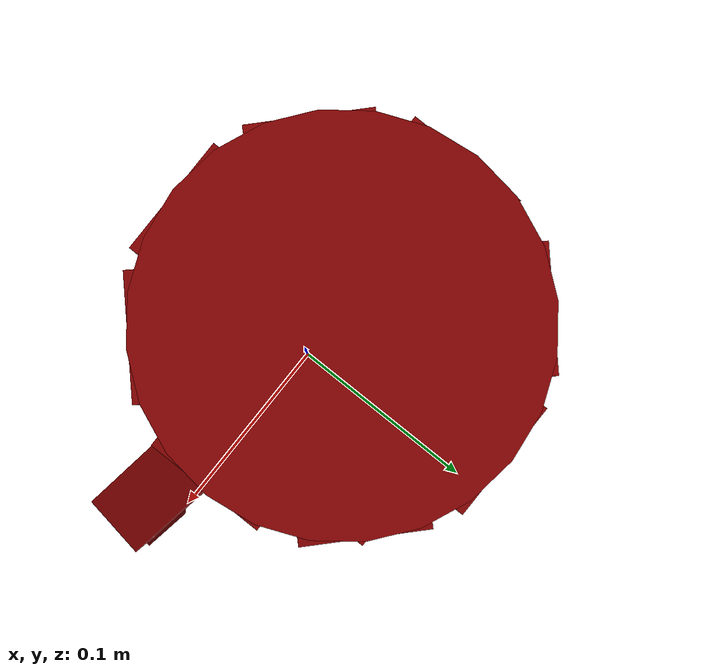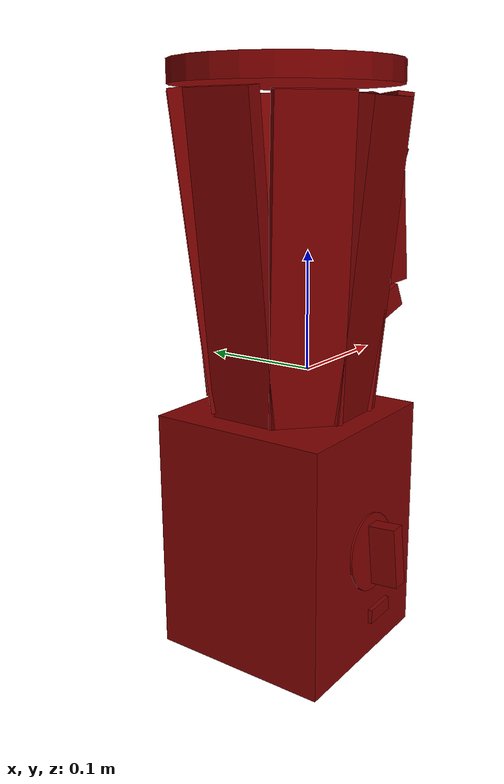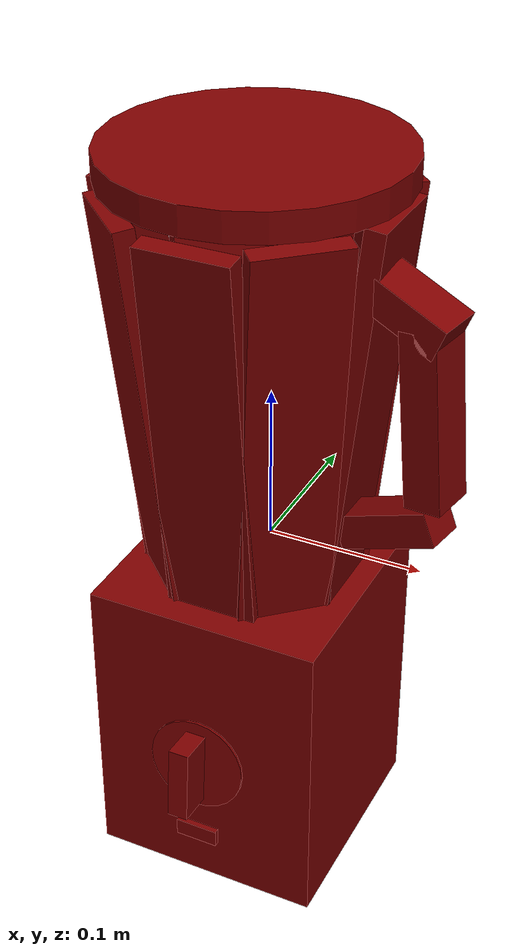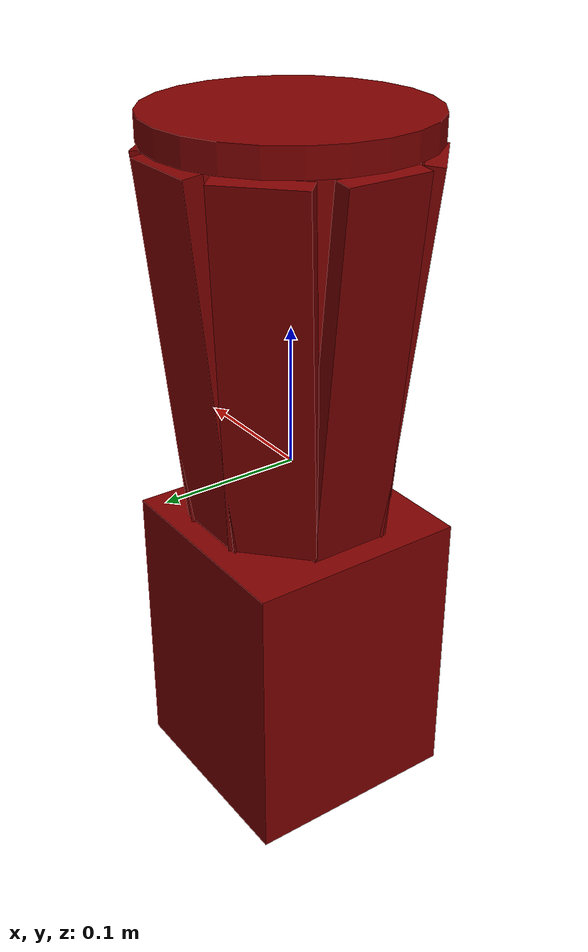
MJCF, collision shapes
<?xml version='1.0' encoding='UTF-8'?>
<mujoco model="model">
  <option timestep="0.002" gravity="0.0 0.0 -9.81"/>
  <compiler angle="radian"/>
  <asset>
    <mesh file="visuals/Blade001.obj" name="Blade001_vis"/>
    <mesh file="visuals/Body001.obj" name="Body001_vis"/>
    <mesh file="visuals/Button001.obj" name="Button001_vis"/>
    <mesh file="visuals/Jug001.obj" name="Jug001_vis"/>
    <mesh file="visuals/Jug001_Clear.obj" name="Jug001_Clear_vis"/>
    <mesh file="visuals/Knob001.obj" name="Knob001_vis"/>
    <mesh file="visuals/Lid001.obj" name="Lid001_vis"/>
    <texture file="visuals/T_BC001.png" name="Body001_material" type="2d"/>
    <material name="Body001_material" rgba="1 1 1 1.0" texture="Body001_material" shininess="0.4472135901451111" specular="0.3103448502657381"/>
    <texture file="visuals/T_BC001.png" name="Button001_material" type="2d"/>
    <material name="Button001_material" rgba="1 1 1 1.0" texture="Button001_material" shininess="0.4472135901451111" specular="0.3103448502657381"/>
    <texture file="visuals/T_BC001.png" name="Jug001_Clear_material" type="2d"/>
    <material name="Jug001_Clear_material" rgba="1 1 1 0.800000011920929" texture="Jug001_Clear_material" shininess="0.8692915439605713" specular="0.33333333333333337"/>
    <texture file="visuals/T_BC001.png" name="Jug001_material" type="2d"/>
    <material name="Jug001_material" rgba="1 1 1 1.0" texture="Jug001_material" shininess="0.4472135901451111" specular="0.3103448502657381"/>
    <texture file="visuals/T_BC001.png" name="Blade001_material" type="2d"/>
    <material name="Blade001_material" rgba="1 1 1 1.0" texture="Blade001_material" shininess="0.4472135901451111" specular="0.3103448502657381"/>
    <texture file="visuals/T_BC001.png" name="Lid001_material" type="2d"/>
    <material name="Lid001_material" rgba="1 1 1 1.0" texture="Lid001_material" shininess="0.4472135901451111" specular="0.3103448502657381"/>
    <texture file="visuals/T_BC001.png" name="Knob001_material" type="2d"/>
    <material name="Knob001_material" rgba="1 1 1 1.0" texture="Knob001_material" shininess="0.4472135901451111" specular="0.3103448502657381"/>
  </asset>
  <default>
    <default class="visual">
      <geom conaffinity="0" contype="0" group="1" type="mesh"/>
    </default>
    <default class="collision">
      <geom group="0" rgba="0.5 0 0 0.5"/>
    </default>
    <default class="spawn">
      <geom group="0" rgba="1 1 1 0.5" contype="0" conaffinity="0"/>
      <site group="0" rgba="1 1 1 0.5"/>
    </default>
    <default class="region">
      <geom group="1" conaffinity="0" contype="0" rgba="0 1 0 0"/>
    </default>
  </default>
  <worldbody>
    <body>
      <body name="object">
        <geom mesh="Body001_vis" type="mesh" solimp="0.998 0.998 0.001" solref="0.001 1" friction="0.95 0.3 0.1" class="visual" material="Body001_material"/>
        <geom class="collision" type="box" pos="-0.01514570 0.00819035 -0.13751809" size="0.07678362727165222 0.07831722497940063 0.1044483631849289" quat="1.0 0.0 0.0 0.0"/>
        <body name="Button001">
          <joint axis="0.0 1.0 0.0" pos="-0.01380459 -0.07846444 -0.19373468" limited="true" name="Button001_joint" range="0.0 0.002" type="slide" damping="1" frictionloss="1" armature=".01" stiffness="0.05"/>
          <geom mesh="Button001_vis" type="mesh" solimp="0.998 0.998 0.001" solref="0.001 1" friction="0.95 0.3 0.1" class="visual" material="Button001_material"/>
          <geom class="collision" type="box" pos="-0.01331331 -0.08189568 -0.19373134" size="0.014210648834705353 0.0018777165096253157 0.005925004370510578" quat="1.0 0.0 0.0 0.0"/>
        </body>
        <body name="Jug001_Clear">
          <geom class="region" name="reg_int" type="box" pos="-0.014905024999999999 0.00882501 0.09482433000000001" size="0.037721345 0.03874804 0.09806829"/>
          <joint axis="0.0 0.0 1.0" pos="0.00000000 0.00774600 0.00000000" limited="true" name="Jug001_Clear_joint" range="0.0 0.1" type="slide" damping="1" frictionloss="1" armature=".01" stiffness="0.05"/>
          <geom mesh="Jug001_Clear_vis" type="mesh" solimp="0.998 0.998 0.001" solref="0.001 1" friction="0.95 0.3 0.1" class="visual" material="Jug001_Clear_material"/>
          <geom class="collision" type="box" pos="0.10569994 -0.01217157 0.11763810" size="0.011882654391229153 0.015193642117083073 0.05532687529921532" quat="0.9955431222915649 -0.0037091949488967657 -0.0444367341697216 -0.08309933543205261"/>
          <geom class="collision" type="box" pos="0.08453979 -0.00878165 0.03727124" size="0.03337487205862999 0.013104078359901905 0.010871321894228458" quat="0.9774189591407776 -0.016214270144701004 -0.19424954056739807 -0.08158649504184723"/>
          <geom class="collision" type="box" pos="0.09116723 -0.00972842 0.17908831" size="0.02543867938220501 0.015193642117083073 0.01057860441505909" quat="0.9774189591407776 0.016214268282055855 0.19424955546855927 -0.08158648014068604"/>
          <geom class="collision" type="box" pos="-0.01369678 0.08226802 0.09996044" size="0.029443033039569855 0.006673652678728104 0.12612296640872955" quat="0.9985349774360657 -0.054110053926706314 -0.0 0.0"/>
          <geom class="collision" type="box" pos="-0.01369678 -0.06365235 0.09615796" size="0.029443033039569855 0.006501862313598394 0.12452355027198792" quat="0.9985349774360657 0.05411006137728691 0.0 0.0"/>
          <geom class="collision" type="box" pos="-0.08666596 0.00778433 0.09875156" size="0.029443033039569855 0.006501862313598394 0.12713243067264557" quat="0.7060708999633789 0.038261592388153076 -0.03826158866286278 -0.7060708403587341"/>
          <geom class="collision" type="box" pos="0.05640423 0.00778434 0.09898844" size="0.029443033039569855 0.006568617653101683 0.127089262008667" quat="0.7060708999633789 -0.03826158493757248 0.03826158493757248 -0.7060708403587341"/>
          <geom class="collision" type="box" pos="0.03581584 0.06147503 0.09893665" size="0.029443033039569855 0.006563021335750818 0.12714074552059174" quat="0.9271512031555176 -0.050241824239492416 0.020091267302632332 -0.37075966596603394"/>
          <geom class="collision" type="box" pos="-0.06443459 -0.04374183 0.09743603" size="0.029443033039569855 0.006501862313598394 0.12580914795398712" quat="0.9271512031555176 0.05024183169007301 -0.02009126916527748 -0.37075966596603394"/>
          <geom class="collision" type="box" pos="0.03301706 -0.04442769 0.09789914" size="0.029443034902215004 0.006501862313598394 0.1262749880552292" quat="0.9296003580093384 0.05037453770637512 0.019756143912672997 0.36457544565200806"/>
          <geom class="collision" type="box" pos="-0.06531331 0.06269629 0.10036092" size="0.029443034902215004 0.006716929841786623 0.12572482228279114" quat="0.9296003580093384 -0.050374530255794525 -0.019756142050027847 0.36457544565200806"/>
          <geom class="collision" type="cylinder" pos="-0.01625181 0.00786050 -0.02786859" size="0.057328250259160995 0.0008909525349736214" quat="1.0 0.0 0.0 0.0"/>
          <body name="Jug001">
            <geom mesh="Jug001_vis" type="mesh" solimp="0.998 0.998 0.001" solref="0.001 1" friction="0.95 0.3 0.1" class="visual" material="Jug001_material"/>
            <geom class="collision" type="box" pos="0.10569994 -0.01217157 0.11763810" size="0.011882654391229153 0.015193642117083073 0.05532687529921532" quat="0.9955431222915649 -0.0037091949488967657 -0.0444367341697216 -0.08309933543205261"/>
            <geom class="collision" type="box" pos="0.08453979 -0.00878165 0.03727124" size="0.03337487205862999 0.013104078359901905 0.010871321894228458" quat="0.9774189591407776 -0.016214270144701004 -0.19424954056739807 -0.08158649504184723"/>
            <geom class="collision" type="box" pos="0.09116723 -0.00972842 0.17908831" size="0.02543867938220501 0.015193642117083073 0.01057860441505909" quat="0.9774189591407776 0.016214268282055855 0.19424955546855927 -0.08158648014068604"/>
            <geom class="collision" type="box" pos="-0.01369678 0.08226802 0.09996044" size="0.029443033039569855 0.006673652678728104 0.12612296640872955" quat="0.9985349774360657 -0.054110053926706314 -0.0 0.0"/>
            <geom class="collision" type="box" pos="-0.01369678 -0.06365235 0.09615796" size="0.029443033039569855 0.006501862313598394 0.12452355027198792" quat="0.9985349774360657 0.05411006137728691 0.0 0.0"/>
            <geom class="collision" type="box" pos="-0.08666596 0.00778433 0.09875156" size="0.029443033039569855 0.006501862313598394 0.12713243067264557" quat="0.7060708999633789 0.038261592388153076 -0.03826158866286278 -0.7060708403587341"/>
            <geom class="collision" type="box" pos="0.05640423 0.00778434 0.09898844" size="0.029443033039569855 0.006568617653101683 0.127089262008667" quat="0.7060708999633789 -0.03826158493757248 0.03826158493757248 -0.7060708403587341"/>
            <geom class="collision" type="box" pos="0.03581584 0.06147503 0.09893665" size="0.029443033039569855 0.006563021335750818 0.12714074552059174" quat="0.9271512031555176 -0.050241824239492416 0.020091267302632332 -0.37075966596603394"/>
            <geom class="collision" type="box" pos="-0.06443459 -0.04374183 0.09743603" size="0.029443033039569855 0.006501862313598394 0.12580914795398712" quat="0.9271512031555176 0.05024183169007301 -0.02009126916527748 -0.37075966596603394"/>
            <geom class="collision" type="box" pos="0.03301706 -0.04442769 0.09789914" size="0.029443034902215004 0.006501862313598394 0.1262749880552292" quat="0.9296003580093384 0.05037453770637512 0.019756143912672997 0.36457544565200806"/>
            <geom class="collision" type="box" pos="-0.06531331 0.06269629 0.10036092" size="0.029443034902215004 0.006716929841786623 0.12572482228279114" quat="0.9296003580093384 -0.050374530255794525 -0.019756142050027847 0.36457544565200806"/>
            <geom class="collision" type="cylinder" pos="-0.01625181 0.00786050 -0.02786859" size="0.057328250259160995 0.0008909525349736214" quat="1.0 0.0 0.0 0.0"/>
            <geom class="collision" type="cylinder" pos="-0.01625181 0.00786050 -0.02501501" size="0.012912442907691002 0.004275952931493521" quat="1.0 0.0 0.0 0.0"/>
            <body name="Blade001">
              <joint axis="0.0 0.0 1.0" pos="-0.01602507 0.00731437 -0.01755270" limited="false" name="Blade001_joint" range="0 360" type="hinge" damping="1" frictionloss="1" armature=".01" stiffness="0.05"/>
              <geom mesh="Blade001_vis" type="mesh" solimp="0.998 0.998 0.001" solref="0.001 1" friction="0.95 0.3 0.1" class="visual" material="Blade001_material"/>
              <geom class="collision" type="cylinder" pos="-0.01625181 0.00786050 -0.01176064" size="0.010120311751961708 0.006583241745829582" quat="1.0 0.0 0.0 0.0"/>
            </body>
          </body>
          <body name="Lid001">
            <joint axis="0.0 0.0 1.0" pos="-0.01442014 0.01074774 0.22061558" limited="true" name="Lid001_joint" range="0.0 0.1" type="slide" damping="1" frictionloss="1" armature=".01" stiffness="0.05"/>
            <geom mesh="Lid001_vis" type="mesh" solimp="0.998 0.998 0.001" solref="0.001 1" friction="0.95 0.3 0.1" class="visual" material="Lid001_material"/>
            <geom class="collision" type="cylinder" pos="-0.01520580 0.01094722 0.23822403" size="0.09246478974819183 0.0091631431132555" quat="1.0 0.0 0.0 0.0"/>
          </body>
        </body>
        <body name="Knob001">
          <joint axis="0.0 0.9961947202682495 -0.08715574443340302" pos="-0.01608700 -0.08206573 -0.14010651" limited="true" name="Knob001_joint" range="0.0 3.141592653589793" type="hinge" damping="0.05" armature="0.001"/>
          <geom mesh="Knob001_vis" type="mesh" solimp="0.998 0.998 0.001" solref="0.001 1" friction="0.95 0.3 0.1" class="visual" material="Knob001_material"/>
          <geom class="collision" type="cylinder" pos="-0.01616849 -0.07504041 -0.14093654" size="0.03245633468031883 0.0008922007982619107" quat="0.7324968576431274 0.6807703971862793 0.0 0.0"/>
          <geom class="collision" type="box" pos="-0.01613558 -0.08936560 -0.13958450" size="0.006805765442550182 0.01165817677974701 0.024993430823087692" quat="0.999072253704071 -0.04306577146053314 -1.295046431204483e-10 3.0043463272733106e-09"/>
        </body>
        <geom class="region" name="reg_main" type="box" pos="-0.020575135 0.009352610000000004 0.0" size="0.100675135 0.09490660000000001 0.24944317"/>
      </body>
    </body>
  </worldbody>
  <actuator>
    <motor name="Button001_joint_actuator" joint="Button001_joint" gear="0.2"/>
    <motor name="Jug001_Clear_joint_actuator" joint="Jug001_Clear_joint" gear="200"/>
    <motor name="Knob001_joint_actuator" joint="Knob001_joint" gear="10"/>
    <motor name="Lid001_joint_actuator" joint="Lid001_joint" gear="20"/>
    <motor name="Blade001_joint_actuator" joint="Blade001_joint" gear="10"/>
  </actuator>
</mujoco>
